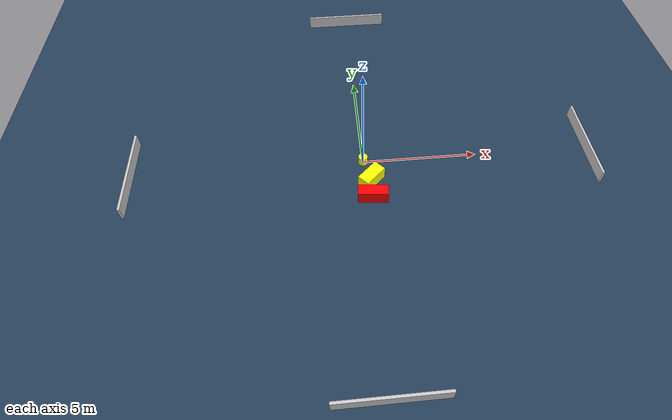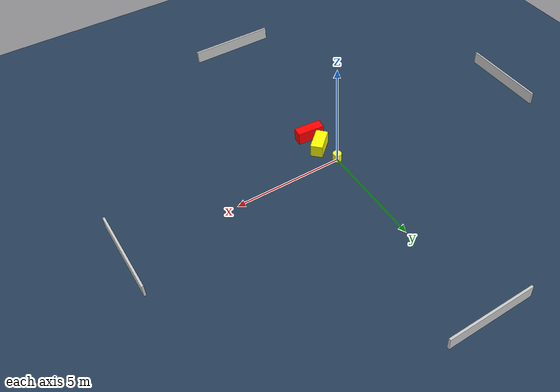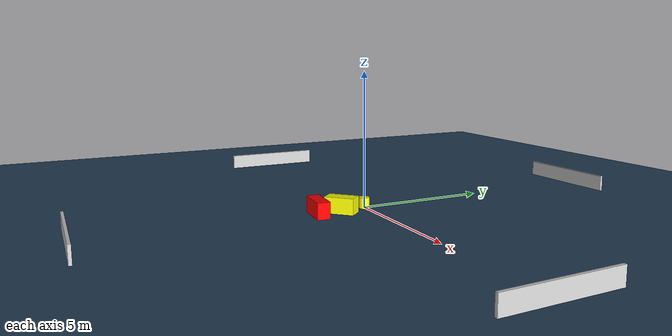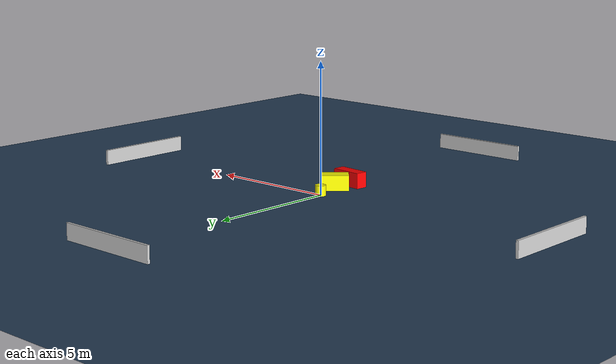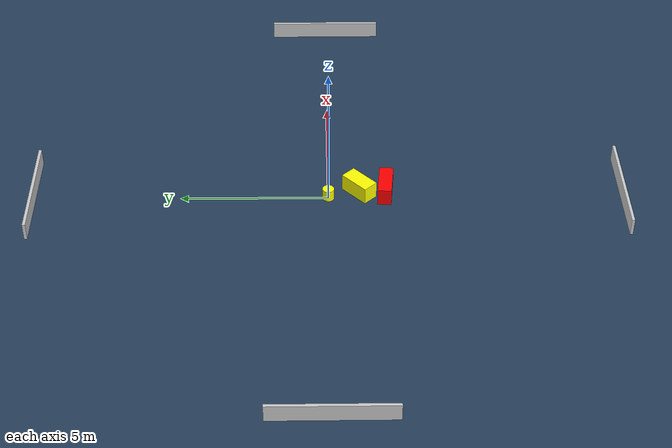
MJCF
<?xml version="1.0" ?>
<mujoco model="generated_environment">
  <option timestep="0.01" integrator="RK4" cone="elliptic"/>
  <default>
    <geom density="1"/>
  </default>
  <asset>
    <texture builtin="gradient" height="3072" name="skybox" rgb1="0.3 0.5 0.7" rgb2="0 0 0" type="skybox" width="512"/>
    <texture builtin="checker" height="300" name="groundplane" rgb1="0.2 0.3 0.4" rgb2="0.1 0.2 0.3" type="2d" width="300"/>
    <material name="groundplane" reflectance="0.2" texrepeat="5 5" texture="groundplane"/>
  </asset>
  <worldbody>
    <light dir="0 0 -1" directional="true" pos="0 0 1.5"/>
    <geom condim="3" friction="0.5 0.005 0.001" material="groundplane" name="floor" pos="0 0 0" size="0 0 0.05" type="plane"/>
    <body name="walls">
      <geom name="wall_1" condim="4" pos="-10.0 0.0 0.3" rgba="0.800000011920929 0.800000011920929 0.800000011920929 1.0" size="0.05 2.0 0.3" type="box"/>
      <geom name="wall_2" condim="4" pos="10.0 0.0 0.3" rgba="0.800000011920929 0.800000011920929 0.800000011920929 1.0" size="0.05 2.0 0.3" type="box"/>
      <geom name="wall_3" condim="4" pos="0.0 -10.0 0.3" rgba="0.800000011920929 0.800000011920929 0.800000011920929 1.0" size="2.0 0.05 0.3" type="box"/>
      <geom name="wall_4" condim="4" pos="0.0 10.0 0.3" rgba="0.800000011920929 0.800000011920929 0.800000011920929 1.0" size="2.0 0.05 0.3" type="box"/>
    </body>
    <body name="robot">
      <joint name="joint_x" type="slide" pos="0 0 0" axis="1 0 0"/>
      <joint name="joint_y" type="slide" pos="0 0 0" axis="0 1 0"/>
      <geom name="robot" type="cylinder" pos="0.0 0.0 0.2" size="0.2 0.2 0.0" mass="5.0" friction="1.0 0.005 0.0001" condim="4" rgba="1.0 1.0 0.0 1.0"/>
    </body>
    <body name="obstacle_1_movable">
      <geom name="obstacle_1_movable" condim="4" pos="0.26658591373291995 -1.0560338853217253 0.3" euler="0 0 133.37881014405022" friction="0.0 0.005 0.001" rgba="1.0 1.0 0.0 1.0" size="0.2754164501136115 0.5481419399752843 0.3" type="box" mass="0.1"/>
      <joint type="free"/>
    </body>
    <body name="obstacle_2_static">
      <geom name="obstacle_2_static" condim="4" pos="0.2453638410294821 -1.9450918162366113 0.3" euler="0 0 84.83769085744129" friction="0.0 0.005 0.001" rgba="1.0 0.0 0.0 1.0" size="0.23536102635946282 0.6306721603442222 0.3" type="box"/>
    </body>
  </worldbody>
  <actuator>
    <motor name="actuator_x" joint="joint_x" gear="1" ctrlrange="-1 1"/>
    <motor name="actuator_y" joint="joint_y" gear="1" ctrlrange="-1 1"/>
  </actuator>
</mujoco>
